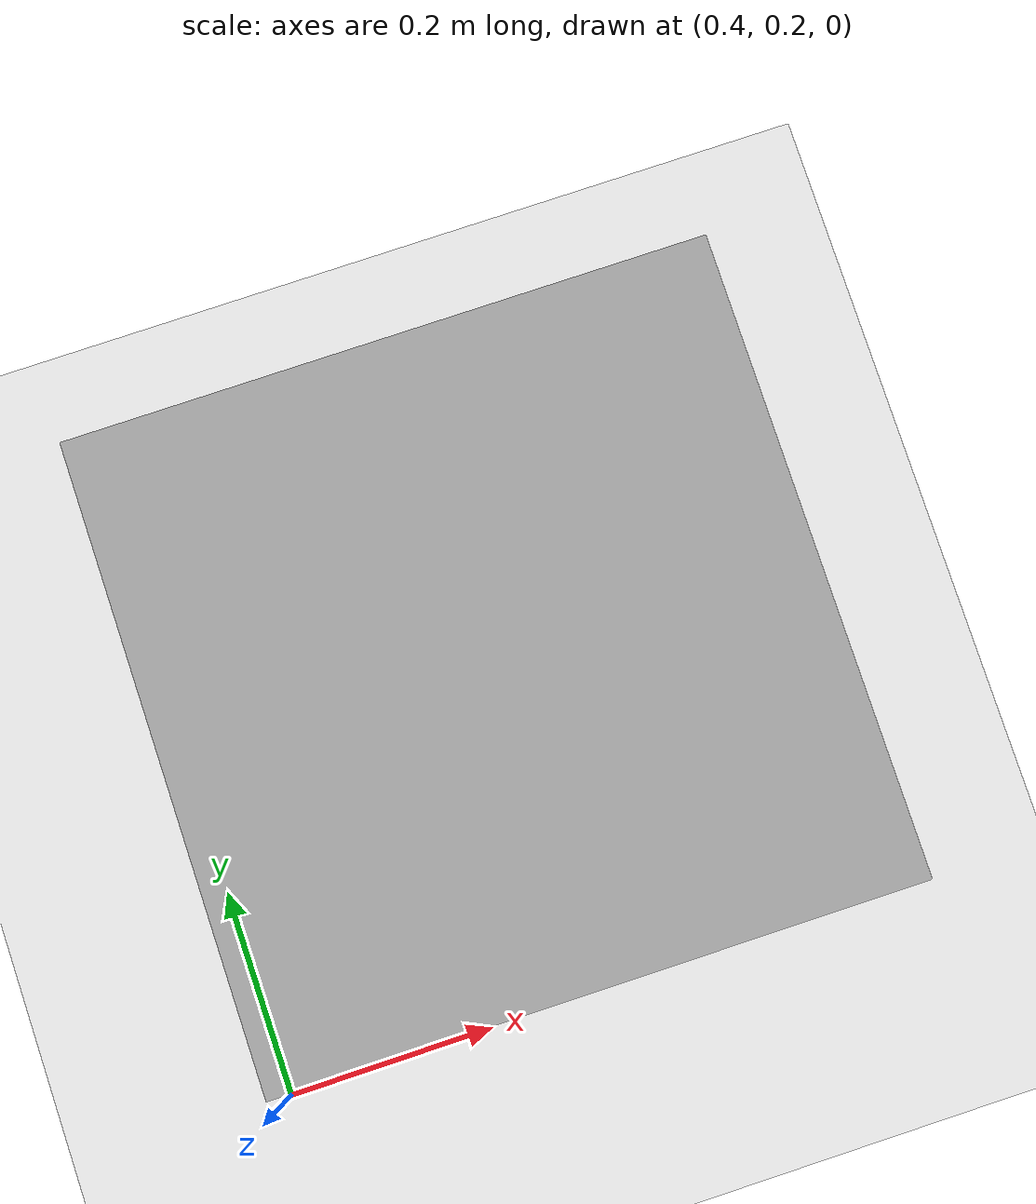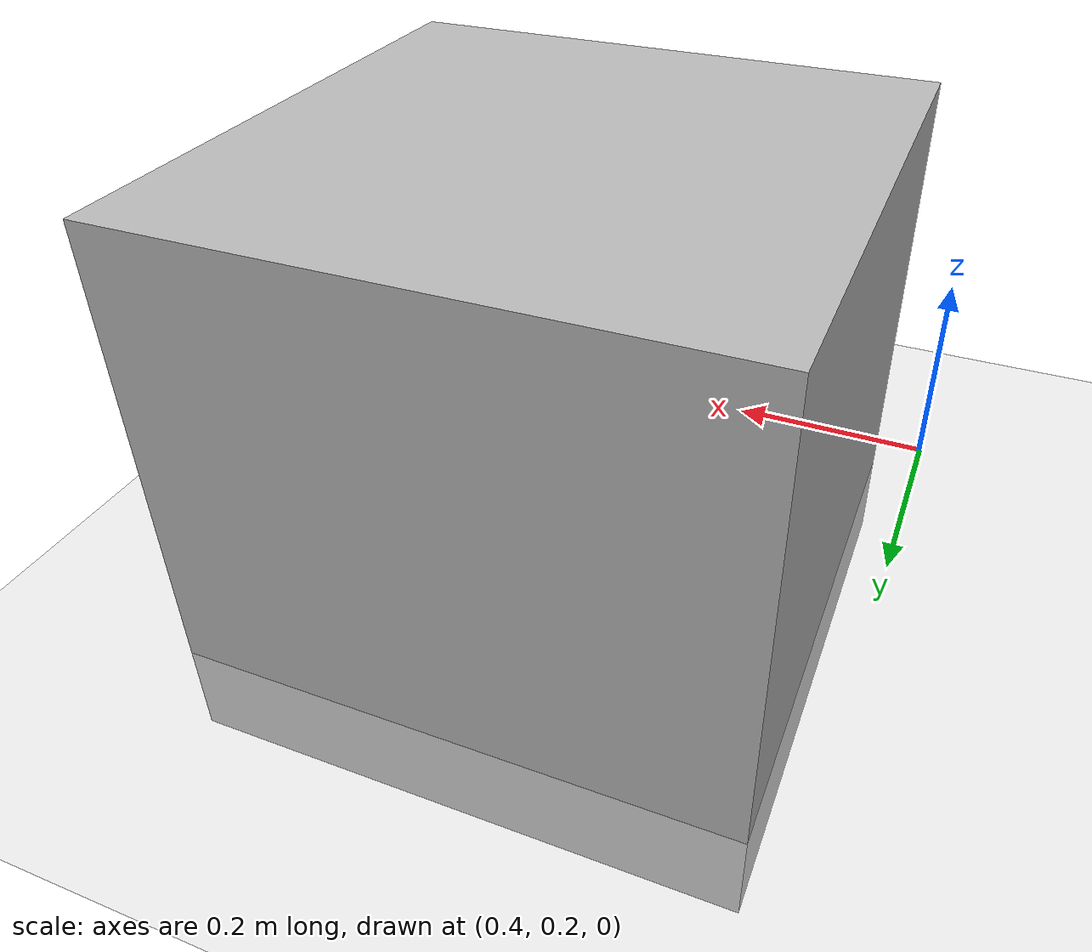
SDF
<?xml version="1.0" ?>
<sdf version="1.4">
  <world name="default">
    <physics type="ode">
      <gravity>0 0 -9.81</gravity>
      <ode>
        <solver>
          <type>quick</type>
          <iters>20</iters>
          <sor>1.0</sor>
        </solver>
        <constraints>
          <cfm>0.0</cfm>
          <erp>0.2</erp>
          <contact_max_correcting_vel>100.0</contact_max_correcting_vel>
          <contact_surface_layer>0.0</contact_surface_layer>
        </constraints>
      </ode>
      <real_time_update_rate>1000</real_time_update_rate>
      <max_step_size>0.001</max_step_size>
    </physics>
    <!-- A global light source -->
    <include>
      <uri>/home/lab/catkin_ws/src/rqt_mybag/src/rqt_mybag/Scenarios/Extentions/models/box</uri>
      <name>face</name>
      <pose> 0.692712758273 0.486395009384 -0.34 0 0 0</pose>
    </include>
    <include>
      <uri>model://sun</uri>
    </include>
    <!-- A ground plane -->
    <include>
      <uri>model://ground_plane</uri>
    </include>
  </world>
</sdf>

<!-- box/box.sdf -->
<sdf version="1.4">
  <model name="box">
    <static>0</static>

          <link name="box">
            <pose>0 0 .5 0 0 0</pose>

            <collision name="collision">
              <geometry>
                <box>
                  <size>0.5 0.5 0.5</size>
                </box>
              </geometry>
            </collision>

            <visual name="visual">
              <geometry>
                <box>
                  <size>0.5 0.5 0.5</size>
                </box>
              </geometry>
	<material>
          <script>
	      <uri>/home/lab/catkin_ws/src/rqt_mybag/src/rqt_mybag/Scenarios/Extentions/models/box/material/scripts</uri>
	      <uri>/home/lab/catkin_ws/src/rqt_mybag/src/rqt_mybag/Scenarios/Extentions/models/box/material/textures</uri>
              <name>Custom/box</name>
          </script>
        </material>

            </visual>
          </link>
  </model>
</sdf>
